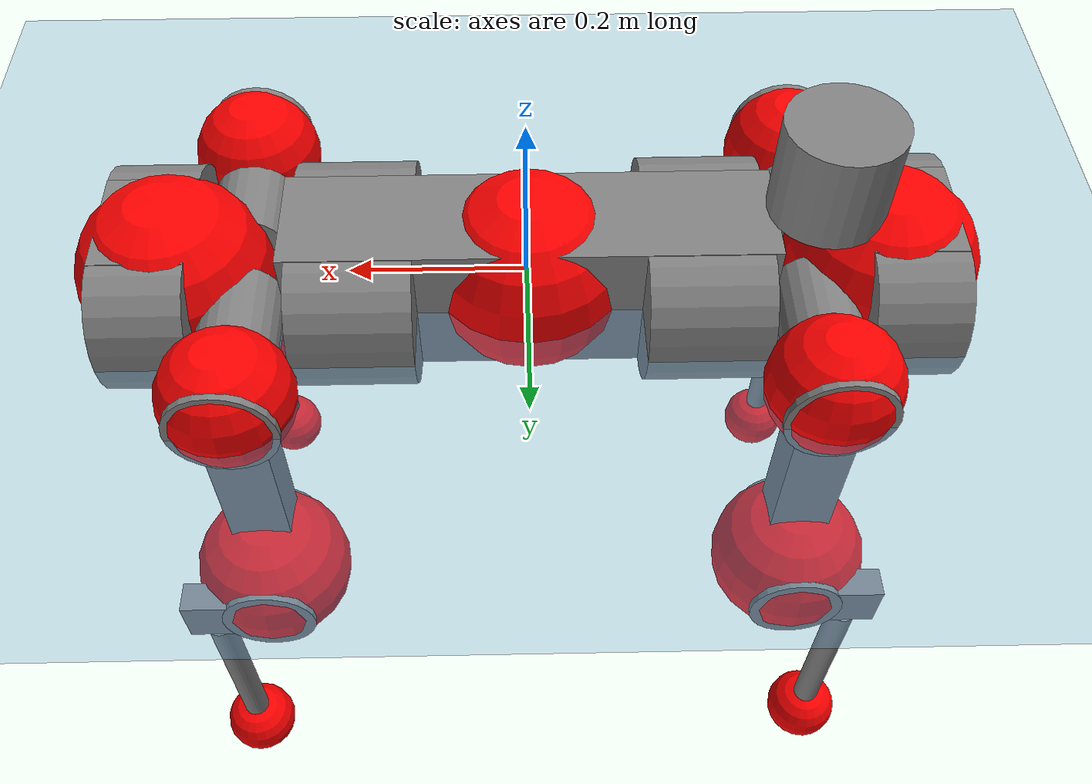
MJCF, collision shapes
<mujoco model="anymal_c">
  <compiler angle="radian" assetdir="assets" balanceinertia="true" inertiafromgeom="false"/>

  <option timestep="0.005" density="1.2" viscosity="2e-05"/>

  <size nkey="1"/>

  <visual>
    <quality shadowsize="8192"/>
    <map shadowclip="0.5"/>
  </visual>

  <default>
    <default class="/">
      <material specular="0" shininess="0.25"/>
      <geom contype="0" conaffinity="0" group="1" solref="-1000 -80"/>
      <site size="0.01 0.005 0.005" group="5"/>
      <general forcelimited="true" forcerange="-80 80" biastype="affine" gainprm="80" biasprm="0 -80 -2"/>
      <default class="anymal_c">
        <joint armature="0.01" damping="0.01" frictionloss="0.1"/>
        <default class="visual">
          <geom type="mesh" group="2"/>
          <default class="visual_zflip"/>
        </default>
        <default class="collision">
          <geom type="cylinder" group="3"/>
          <default class="foot">
            <geom size="0.03 0 0" type="sphere" condim="6" priority="1" friction="0.8 0.02 0.01" solimp="0.015 1 0.03"/>
          </default>
        </default>
      </default>
      <default class="reward_collision_sphere">
        <geom group="5" rgba="1 0 0 1"/>
      </default>
    </default>
  </default>

  <asset>
    <texture type="skybox" colorspace="auto" name="//unnamed_texture_0" builtin="gradient" rgb1="0.95 0.95 0.95" rgb2="0.95 0.95 0.95" width="100" height="600"/>
    <texture type="2d" colorspace="auto" name="texplane" builtin="checker" rgb1="0.345 0.575 0.748" rgb2="0.345 0.575 0.748" markrgb="1 1 1" width="512" height="512"/>
    <texture type="2d" colorspace="linear" name="base" file="base.png"/>
    <texture type="2d" colorspace="linear" name="top_shell" file="top_shell.png"/>
    <texture type="2d" colorspace="linear" name="bottom_shell" file="bottom_shell.png"/>
    <texture type="2d" colorspace="linear" name="remote" file="remote.png"/>
    <texture type="2d" colorspace="linear" name="hatch" file="hatch.png"/>
    <texture type="2d" colorspace="linear" name="handle" file="handle.png"/>
    <texture type="2d" colorspace="linear" name="face" file="face.png"/>
    <texture type="2d" colorspace="linear" name="battery" file="battery.png"/>
    <texture type="2d" colorspace="linear" name="lidar_cage" file="lidar_cage.png"/>
    <texture type="2d" colorspace="linear" name="depth_camera" file="depth_camera.png"/>
    <texture type="2d" colorspace="linear" name="wide_angle_camera" file="wide_angle_camera.png"/>
    <texture type="2d" colorspace="linear" name="lidar" file="lidar.png"/>
    <texture type="2d" colorspace="linear" name="drive" file="drive.png"/>
    <texture type="2d" colorspace="linear" name="hip_l" file="hip_l.png"/>
    <texture type="2d" colorspace="linear" name="shank_l" file="shank_l.png"/>
    <texture type="2d" colorspace="linear" name="foot" file="foot.png"/>
    <texture type="2d" colorspace="linear" name="thigh" file="thigh.png"/>
    <texture type="2d" colorspace="linear" name="shank_r" file="shank_r.png"/>
    <texture type="2d" colorspace="linear" name="hip_r" file="hip_r.png"/>
    <material name="MatPlane" class="/" texture="texplane" texuniform="true" texrepeat="2 2" specular="0.9" shininess="0.5"/>
    <material name="black_plastic" class="/" rgba="0.007 0.007 0.007 1"/>
    <material name="green" class="/" rgba="0.052 0.178 0.033 1"/>
    <material name="red" class="/" rgba="0.178 0.006 0.005 1"/>
    <material name="yellow" class="/" rgba="0.178 0.119 0.006 1"/>
    <material name="lwl" class="/" rgba="0.8 0.8 0.8 1"/>
    <material name="base" class="/" texture="base"/>
    <material name="top_shell" class="/" texture="top_shell"/>
    <material name="bottom_shell" class="/" texture="bottom_shell"/>
    <material name="hip_l" class="/" texture="hip_l"/>
    <material name="thigh" class="/" texture="thigh"/>
    <material name="shank_l" class="/" texture="shank_l"/>
    <material name="foot" class="/" texture="foot"/>
    <material name="hip_r" class="/" texture="hip_r"/>
    <material name="shank" class="/" texture="shank_r"/>
    <material name="hatch" class="/" texture="hatch"/>
    <material name="remote" class="/" texture="remote"/>
    <material name="handle" class="/" texture="handle"/>
    <material name="face" class="/" texture="face"/>
    <material name="depth_camera" class="/" texture="depth_camera"/>
    <material name="wide_angle_camera" class="/" texture="wide_angle_camera"/>
    <material name="battery" class="/" texture="battery"/>
    <material name="lidar_cage" class="/" texture="lidar_cage"/>
    <material name="lidar" class="/" texture="lidar"/>
    <material name="drive" class="/" texture="drive"/>
    <mesh name="base_0" class="/" file="base_0.obj"/>
    <mesh name="base_1" class="/" file="base_1.obj"/>
    <mesh name="base_2" class="/" file="base_2.obj"/>
    <mesh name="base_3" class="/" file="base_3.obj"/>
    <mesh name="base_4" class="/" file="base_4.obj"/>
    <mesh name="base_5" class="/" file="base_5.obj"/>
    <mesh name="top_shell" class="/" file="top_shell.obj"/>
    <mesh name="bottom_shell" class="/" file="bottom_shell.obj"/>
    <mesh name="remote" class="/" file="remote.obj"/>
    <mesh name="handle" class="/" file="handle.obj"/>
    <mesh name="face" class="/" file="face.obj"/>
    <mesh name="wide_angle_camera" class="/" file="wide_angle_camera.obj"/>
    <mesh name="depth_camera" class="/" file="depth_camera.obj"/>
    <mesh name="battery" class="/" file="battery.obj"/>
    <mesh name="lidar_cage" class="/" file="lidar_cage.obj"/>
    <mesh name="lidar" class="/" file="lidar.obj"/>
    <mesh name="drive" class="/" file="drive.obj"/>
    <mesh name="hip_l" class="/" file="hip_l.obj"/>
    <mesh name="thigh" class="/" file="thigh.obj"/>
    <mesh name="shank_l" class="/" file="shank_l.obj"/>
    <mesh name="foot" class="/" file="foot.obj"/>
    <mesh name="hip_r" class="/" file="hip_r.obj"/>
    <mesh name="hatch" class="/" file="hatch.obj"/>
    <mesh name="shank_r" class="/" file="shank_r.obj"/>
  </asset>

  <worldbody>
    <geom name="floor" class="/" size="100 100 0.125" type="plane" group="0" material="MatPlane"/>
    <light name="toplight_shadow" class="/" pos="0 0 5" dir="0.0990148 0.0990148 -0.990148" type="directional" ambient="0.04 0.04 0.04" diffuse="0.55 0.55 0.55" specular="0.12 0.12 0.12"/>
    <light name="toplight_fill" class="/" pos="0 0 5" dir="0.0990148 0.0990148 -0.990148" type="directional" castshadow="false" ambient="0.04 0.04 0.04" diffuse="0.3 0.3 0.3" specular="0.08 0.08 0.08"/>
    <body name="trunk" childclass="anymal_c" pos="-0.0027709 -0.00105866 -0.00197592" quat="0.999999 -0.000463138 0.000310841 0.00116152">
      <inertial pos="-0.000196364 0.00191385 0.0534106" quat="0.494086 0.496255 0.497799 0.51167" mass="15.1777" diaginertia="0.34773 0.227666 0.325363"/>
      <joint name="//unnamed_joint_0" type="free" armature="0" damping="0" frictionloss="0"/>
      <geom name="//unnamed_geom_1" class="visual" material="green" mesh="base_0"/>
      <geom name="//unnamed_geom_2" class="visual" material="yellow" mesh="base_1"/>
      <geom name="//unnamed_geom_3" class="visual" material="red" mesh="base_2"/>
      <geom name="//unnamed_geom_4" class="visual" material="black_plastic" mesh="base_3"/>
      <geom name="//unnamed_geom_5" class="visual" material="lwl" mesh="base_4"/>
      <geom name="//unnamed_geom_6" class="visual" material="base" mesh="base_5"/>
      <geom name="trunk_1" class="collision" size="0.269156 0.0649687 0.0835311" type="box"/>
      <geom name="trunk_2" class="collision" size="0.0835311 0.067289" pos="0.191919 0.0574063 0" quat="0.707107 0 0.707107 0"/>
      <geom name="trunk_3" class="collision" size="0.0835311 0.067289" pos="-0.191919 0.0574063 0" quat="0.707107 0 0.707107 0"/>
      <geom name="trunk_4" class="collision" size="0.0835311 0.067289" pos="0.191919 -0.0574063 0" quat="0.707107 0 0.707107 0"/>
      <geom name="trunk_5" class="collision" size="0.0835311 0.067289" pos="-0.191919 -0.0574063 0" quat="0.707107 0 0.707107 0"/>
      <geom name="//unnamed_geom_12" class="visual" material="top_shell" mesh="top_shell"/>
      <geom name="//unnamed_geom_13" class="visual" material="bottom_shell" mesh="bottom_shell"/>
      <geom name="//unnamed_geom_14" class="visual" material="remote" mesh="remote"/>
      <geom name="//unnamed_geom_15" class="visual" material="handle" mesh="handle"/>
      <geom name="//unnamed_geom_16" class="visual" pos="0.365749 0 0" quat="1 0 0 0" material="face" mesh="face"/>
      <geom name="trunk_6" class="collision" size="0.0510468 0.0649687 0.0835311" pos="0.41428 0 0" type="box"/>
      <geom name="//unnamed_geom_18" class="collision" size="0.0835311 0.0510468" pos="0.41428 0.0574063 0" quat="0.707107 0 0.707107 0"/>
      <geom name="//unnamed_geom_19" class="collision" size="0.0835311 0.0510468" pos="0.41428 -0.0574063 0" quat="0.707107 0 0.707107 0"/>
      <geom name="//unnamed_geom_20" class="visual" pos="0.407362 0 -0.0331077" quat="0.965926 0 0.258819 0" material="depth_camera" mesh="depth_camera"/>
      <geom name="//unnamed_geom_21" class="visual" pos="0.452664 0 0.016196" material="wide_angle_camera" mesh="wide_angle_camera"/>
      <geom name="//unnamed_geom_22" class="visual_zflip" pos="-0.365749 0 0" quat="0 0 0 1" material="face" mesh="face"/>
      <geom name="trunk_7" class="collision" size="0.0510468 0.0649687 0.0835311" pos="-0.41428 0 0" quat="0 0 0 1" type="box"/>
      <geom name="//unnamed_geom_24" class="collision" size="0.0835311 0.0510468" pos="-0.41428 -0.0574063 0" quat="0 -0.707107 0 0.707107"/>
      <geom name="//unnamed_geom_25" class="collision" size="0.0835311 0.0510468" pos="-0.41428 0.0574063 0" quat="0 -0.707107 0 0.707107"/>
      <geom name="//unnamed_geom_26" class="visual" pos="-0.407362 0 -0.0331077" quat="0 -0.258819 0 0.965926" material="depth_camera" mesh="depth_camera"/>
      <geom name="//unnamed_geom_27" class="visual_zflip" pos="-0.452664 0 0.016196" quat="0 0 0 1" material="wide_angle_camera" mesh="wide_angle_camera"/>
      <geom name="//unnamed_geom_28" class="visual" material="battery" mesh="battery"/>
      <geom name="//unnamed_geom_29" class="visual" pos="0 0.0618949 0.0299128" quat="0.683013 -0.183013 0.183013 0.683013" material="depth_camera" mesh="depth_camera"/>
      <geom name="//unnamed_geom_30" class="visual" pos="0 -0.0618949 0.0299128" quat="0.683013 0.183013 0.183013 -0.683013" material="depth_camera" mesh="depth_camera"/>
      <geom name="//unnamed_geom_31" class="visual" pos="-0.321188 0 0.0795194" quat="1 0 0 0" material="lidar_cage" mesh="lidar_cage"/>
      <geom name="trunk_8" class="collision" size="0.0649687 0.0556874" pos="-0.321188 0 0.144433"/>
      <geom name="//unnamed_geom_33" class="visual" pos="-0.321188 -2.44745e-05 0.153846" quat="0.707107 0 0 -0.707107" material="lidar" mesh="lidar"/>
      <geom name="//unnamed_geom_34" class="visual" pos="0.264627 0.0853823 -4.5162e-09" quat="0.258819 0.965926 0 0" material="drive" mesh="drive"/>
      <geom name="//unnamed_geom_35" class="visual" pos="0.264627 -0.0853823 4.5162e-09" quat="0.258819 -0.965926 0 0" material="drive" mesh="drive"/>
      <geom name="//unnamed_geom_36" class="visual" pos="-0.264627 0.0853823 4.5162e-09" quat="0 0 0.965926 -0.258819" material="drive" mesh="drive"/>
      <geom name="//unnamed_geom_37" class="visual" pos="-0.264627 -0.0853823 -4.5162e-09" quat="0 0 -0.965926 -0.258819" material="drive" mesh="drive"/>
      <geom name="//unnamed_geom_38" class="visual" pos="0.102357 0 0.0789784" quat="1 0 0 0" material="hatch" mesh="hatch"/>
      <geom name="//unnamed_geom_39" class="reward_collision_sphere" size="0.111375"/>
      <geom name="//unnamed_geom_40" class="reward_collision_sphere" size="0.111375" pos="0.397073 0 0"/>
      <geom name="//unnamed_geom_41" class="reward_collision_sphere" size="0.111375" pos="-0.397073 0 0"/>
      <site name="imu" pos="0.230793 -0.00180595 0.0459276" size="0.00928124"/>
      <camera name="track" pos="0 -1.64018 0" quat="0.707107 0.707107 0 0" mode="trackcom"/>
      <camera name="ego_camera" pos="0.397073 0 -0.0432759" quat="-0.5 -0.5 0.5 0.5"/>
      <body name="LF_HIP" pos="0.265427 0.0856008 -0.00274171" quat="0.258358 0.966049 -0.000146928 0.00101494">
        <inertial pos="0.0480626 -0.0129822 -0.0087075" quat="-0.131643 0.709693 -0.121938 0.681276" mass="2.29379" diaginertia="0.00322673 0.00188149 0.00515182"/>
        <joint name="LF_HAA" pos="0 0 0" axis="0.999894 -0.0082261 0.0120536" stiffness="0.00118257" range="-0.670023 0.488905" armature="0.0106731" damping="0.00419205" frictionloss="0.0976067"/>
        <geom name="//unnamed_geom_42" class="visual" pos="0 -0.000265668 4.36357e-05" quat="0.258819 -0.965926 0 0" material="hip_l" mesh="hip_l"/>
        <geom name="//unnamed_geom_43" class="visual" pos="0.0528549 -0.0633177 -0.038493" quat="0.183013 -0.683013 0.683013 0.183013" material="drive" mesh="drive"/>
        <geom name="//unnamed_geom_44" class="collision" size="0.0464062 0.0649687" pos="0.0528549 -0.0098081 -0.00747049" quat="-0.353553 -0.612372 0.612372 -0.353553"/>
        <body name="LF_THIGH" pos="0.0530591 -0.059643 -0.0468461" quat="0.182836 -0.682938 0.683188 0.182814">
          <inertial pos="0.0271827 -0.00235767 -0.26748" quat="0.993225 -0.00537742 -0.0803782 0.083754" mass="2.47503" diaginertia="0.0159374 0.0107473 0.0061196"/>
          <joint name="LF_HFE" pos="0 0 0" axis="1 9.4943e-05 -3.18787e-05" stiffness="0.00711508" range="-3.14908 3.17944" armature="0.00838148" damping="0" frictionloss="0.0932616"/>
          <geom name="//unnamed_geom_45" class="visual" pos="0.00123945 1.95308e-06 0" quat="0.707107 0 0 -0.707107" material="thigh" mesh="thigh"/>
          <geom name="//unnamed_geom_46" class="collision" size="0.060328 0.0371249" pos="0.0352954 0 0" quat="0.5 0.5 -0.5 -0.5"/>
          <geom name="//unnamed_geom_47" class="collision" size="0.0348046 0.0278437 0.131157" pos="0.0264716 0 -0.152887" quat="0.707107 0 0 -0.707107" type="box"/>
          <geom name="//unnamed_geom_48" class="visual" pos="0.0885033 0 -0.30834" quat="1 0 0 0" material="drive" mesh="drive"/>
          <geom name="//unnamed_geom_49" class="collision" size="0.0464062 0.0649687" pos="0.0267363 0 -0.30834" quat="0.707107 0 0.707107 0"/>
          <geom name="//unnamed_geom_50" class="reward_collision_sphere" size="0.0742499" pos="0.0220596 0 0"/>
          <body name="LF_SHANK" pos="0.0899543 0.00166736 -0.305781" quat="1 -1.67061e-05 5.20862e-05 -0.000143326">
            <inertial pos="0.00468872 -0.0523954 -0.0846348" quat="0.9929 -0.116371 -2.5726e-05 -0.0246553" mass="0.487773" diaginertia="0.00565414 0.00346762 0.00166211"/>
            <joint name="LF_KFE" pos="0 0 0" axis="1 0.000279247 0.00034364" range="-3.0873 3.08674" armature="0.00919119" damping="0.00928983" frictionloss="0.0977306"/>
            <geom name="//unnamed_geom_51" class="visual" pos="0.000404157 0.00215498 0" quat="0.707107 0 0 -0.707107" material="shank_l" mesh="shank_l"/>
            <geom name="LF_kfe_act" class="collision" size="0.0556874 0.0185625" pos="0.0176477 0 0" quat="0.5 0.5 -0.5 -0.5"/>
            <geom name="//unnamed_geom_53" class="collision" size="0.0533662 0.0313242 0.0176344" pos="0.0176477 -0.0471543 0" quat="0.5 0.5 -0.5 -0.5" type="box"/>
            <geom name="//unnamed_geom_54" class="visual" pos="0.011515 -0.0714324 -0.365649" quat="0.382683 0 0 -0.92388" material="foot" mesh="foot"/>
            <geom name="LF_calf" class="collision" size="0.0162422 0.131099" pos="0.0115151 -0.0721269 -0.182824" quat="0.707107 0 0 -0.707107"/>
            <geom name="LF_foot" class="foot" size="0.026781" pos="0.0115151 -0.0721269 -0.341306" quat="0.707107 0 0 -0.707107"/>
            <geom name="//unnamed_geom_57" class="reward_collision_sphere" size="0.0928124" pos="-0.0441193 0 0"/>
            <geom name="//unnamed_geom_58" class="reward_collision_sphere" size="0.0464062" pos="0.0115151 -0.0721269 -0.341306"/>
            <site name="LF_foot" class="foot" pos="0.0115151 -0.0721269 -0.341306" quat="0.707107 0 0 -0.707107" size="0.00928124"/>
          </body>
        </body>
      </body>
      <body name="RF_HIP" pos="0.267273 -0.0836371 0.00258401" quat="0.258833 -0.965922 -6.22154e-06 -1.52306e-05">
        <inertial pos="0.0503136 0.0103814 -0.00863067" quat="0.126619 0.681692 0.135852 0.707678" mass="2.2921" diaginertia="0.00314015 0.00190815 0.0049625"/>
        <joint name="RF_HAA" pos="0 0 0" axis="0.999998 0.000723533 -0.00186881" stiffness="0.000555016" range="-0.437393 0.714094" armature="0.00936817" damping="0.0105653" frictionloss="0.095591"/>
        <geom name="//unnamed_geom_59" class="visual" pos="0 0.000265666 4.36356e-05" quat="0.258819 0.965926 0 0" material="hip_r" mesh="hip_r"/>
        <geom name="//unnamed_geom_60" class="visual" pos="0.0528549 0.0633177 -0.038493" quat="0.183013 0.683013 0.683013 -0.183013" material="drive" mesh="drive"/>
        <geom name="//unnamed_geom_61" class="collision" size="0.0464062 0.0649687" pos="0.0528549 0.0098081 -0.00747049" quat="-0.353553 0.612372 0.612372 0.353553"/>
        <body name="RF_THIGH" pos="0.055022 0.0617843 -0.0485933" quat="0.183059 0.68299 0.683 -0.1831">
          <inertial pos="0.0276317 -8.12212e-05 -0.267866" quat="0.993614 -0.00163202 -0.076806 0.0826362" mass="2.53663" diaginertia="0.0162185 0.0113925 0.0063724"/>
          <joint name="RF_HFE" pos="0 0 0" axis="0.999996 0.00289462 -0.00044631" stiffness="0.00486253" range="-3.1892 3.19491" armature="0.00808597" damping="0.00805791" frictionloss="0.0902493"/>
          <geom name="//unnamed_geom_62" class="visual" pos="0.00123945 1.95308e-06 0" quat="0.707107 0 0 -0.707107" material="thigh" mesh="thigh"/>
          <geom name="//unnamed_geom_63" class="collision" size="0.060328 0.0371249" pos="0.0352954 0 0" quat="0.5 0.5 0.5 0.5"/>
          <geom name="//unnamed_geom_64" class="collision" size="0.0348046 0.0278437 0.131157" pos="0.0264716 0 -0.152887" quat="0.707107 0 0 0.707107" type="box"/>
          <geom name="//unnamed_geom_65" class="visual" pos="0.0885033 0 -0.30834" quat="1 0 0 0" material="drive" mesh="drive"/>
          <geom name="//unnamed_geom_66" class="collision" size="0.0464062 0.0649687" pos="0.0267363 0 -0.30834" quat="0.707107 0 0.707107 0"/>
          <geom name="//unnamed_geom_67" class="reward_collision_sphere" size="0.0742499" pos="0.0220596 0 0"/>
          <body name="RF_SHANK" pos="0.0892338 -0.000648812 -0.308877" quat="1 -5.72481e-05 0.000102917 3.73878e-05">
            <inertial pos="0.00438744 0.050285 -0.0856046" quat="0.992282 0.1228 0.000831267 0.0172208" mass="0.444956" diaginertia="0.00541649 0.00343596 0.00157484"/>
            <joint name="RF_KFE" pos="0 0 0" axis="0.999999 0.00147574 7.0936e-05" range="-3.15449 3.09367" armature="0.0106507" damping="0.00787101" frictionloss="0.0927407"/>
            <geom name="//unnamed_geom_68" class="visual" pos="0.000404155 -0.00215498 0" quat="0.707107 0 0 0.707107" material="shank" mesh="shank_r"/>
            <geom name="RF_kfe_act" class="collision" size="0.0556874 0.0185625" pos="0.0176477 0 0" quat="0.5 0.5 0.5 0.5"/>
            <geom name="//unnamed_geom_70" class="collision" size="0.0533662 0.0313242 0.0176344" pos="0.0176477 0.0471543 0" quat="0.5 0.5 0.5 0.5" type="box"/>
            <geom name="//unnamed_geom_71" class="visual" pos="0.0115152 0.0714324 -0.365649" quat="0.382683 0 0 0.92388" material="foot" mesh="foot"/>
            <geom name="RF_calf" class="collision" size="0.0162422 0.131099" pos="0.0115151 0.0721269 -0.182824" quat="0.707107 0 0 0.707107"/>
            <geom name="RF_foot" class="foot" size="0.0288941" pos="0.0115151 0.0721269 -0.341306" quat="0.707107 0 0 0.707107"/>
            <geom name="//unnamed_geom_74" class="reward_collision_sphere" size="0.0928124" pos="-0.0441193 0 0"/>
            <geom name="//unnamed_geom_75" class="reward_collision_sphere" size="0.0464062" pos="0.0115151 0.0721269 -0.341306"/>
            <site name="RF_foot" class="foot" pos="0.0115151 0.0721269 -0.341306" quat="0.707107 0 0 0.707107" size="0.00928124"/>
          </body>
        </body>
      </body>
      <body name="LH_HIP" pos="-0.263105 0.0844196 -0.00137664" quat="-8.67291e-05 0.000111403 0.966001 -0.258539">
        <inertial pos="0.0506733 0.0132458 -0.0115782" quat="0.135523 0.68275 0.128918 0.706305" mass="2.32366" diaginertia="0.00328306 0.00178736 0.00489396"/>
        <joint name="LH_HAA" pos="0 0 0" axis="0.999999 -0.00117766 -0.000255503" range="-0.453641 0.773347" armature="0.00939872" damping="0" frictionloss="0.104726"/>
        <geom name="//unnamed_geom_76" class="visual" pos="0 0.000265666 4.36356e-05" quat="-0.258819 -0.965926 0 0" material="hip_r" mesh="hip_r"/>
        <geom name="//unnamed_geom_77" class="visual" pos="0.0528549 0.0633177 -0.038493" quat="0.183013 0.683013 0.683013 -0.183013" material="drive" mesh="drive"/>
        <geom name="//unnamed_geom_78" class="collision" size="0.0464062 0.0649687" pos="0.0528549 0.0098081 -0.00747049" quat="-0.353553 0.612372 0.612372 0.353553"/>
        <body name="LH_THIGH" pos="0.0523811 0.0598303 -0.0480172" quat="0.182755 0.683136 0.682945 -0.18306">
          <inertial pos="0.0246215 -0.00106869 -0.267431" quat="0.994203 -0.00694938 -0.0735617 0.0781021" mass="2.52191" diaginertia="0.015963 0.011296 0.00610508"/>
          <joint name="LH_HFE" pos="0 0 0" axis="0.999877 -0.0155203 -0.00228874" range="-3.19275 3.15371" armature="0.00966723" damping="0.0102718" frictionloss="0.0904995"/>
          <geom name="//unnamed_geom_79" class="visual" pos="0.00123945 1.95308e-06 0" quat="0.707107 0 0 -0.707107" material="thigh" mesh="thigh"/>
          <geom name="//unnamed_geom_80" class="collision" size="0.060328 0.0371249" pos="0.0352954 0 0" quat="0.5 0.5 -0.5 -0.5"/>
          <geom name="//unnamed_geom_81" class="collision" size="0.0348046 0.0278437 0.131157" pos="0.0264716 0 -0.152887" quat="0.707107 0 0 -0.707107" type="box"/>
          <geom name="//unnamed_geom_82" class="visual" pos="0.0885033 0 -0.30834" quat="1 0 0 0" material="drive" mesh="drive"/>
          <geom name="//unnamed_geom_83" class="collision" size="0.0464062 0.0649687" pos="0.0267363 0 -0.30834" quat="0.707107 0 0.707107 0"/>
          <geom name="//unnamed_geom_84" class="reward_collision_sphere" size="0.0742499" pos="0.0220596 0 0"/>
          <body name="LH_SHANK" pos="0.0866795 0.000243219 -0.310839" quat="1 -8.86866e-05 -0.000163468 0.000387917">
            <inertial pos="0.00713441 0.047605 -0.084665" quat="0.994043 0.10406 -0.00447833 0.0320818" mass="0.454498" diaginertia="0.00545467 0.00348236 0.00164696"/>
            <joint name="LH_KFE" pos="0 0 0" axis="0.999926 0.00243212 0.0118946" range="-3.13685 3.14251" armature="0.00889438" damping="0.00292874" frictionloss="0.103869"/>
            <geom name="//unnamed_geom_85" class="visual" pos="0.000404155 -0.00215498 0" quat="-0.707107 0 0 -0.707107" material="shank" mesh="shank_r"/>
            <geom name="LH_kfe_act" class="collision" size="0.0556874 0.0185625" pos="0.0176477 0 0" quat="0.5 0.5 -0.5 -0.5"/>
            <geom name="//unnamed_geom_87" class="collision" size="0.0533662 0.0313242 0.0176344" pos="0.0176477 0.0471543 0" quat="0.5 0.5 -0.5 -0.5" type="box"/>
            <geom name="//unnamed_geom_88" class="visual" pos="0.0115152 0.0714324 -0.365649" quat="-0.382683 0 0 -0.92388" material="foot" mesh="foot"/>
            <geom name="LH_calf" class="collision" size="0.0162422 0.131099" pos="0.0115151 0.0721269 -0.182824" quat="0.707107 0 0 -0.707107"/>
            <geom name="LH_foot" class="foot" size="0.0321418" pos="0.0115151 0.0721269 -0.341306" quat="0.707107 0 0 -0.707107"/>
            <geom name="//unnamed_geom_91" class="reward_collision_sphere" size="0.0928124" pos="-0.0441193 0 0"/>
            <geom name="//unnamed_geom_92" class="reward_collision_sphere" size="0.0464062" pos="0.0115151 0.0721269 -0.341306"/>
            <site name="LH_foot" class="foot" pos="0.0115151 0.0721269 -0.341306" quat="0.707107 0 0 -0.707107" size="0.00928124"/>
          </body>
        </body>
      </body>
      <body name="RH_HIP" pos="-0.264524 -0.086183 0.00146727" quat="0.000151133 5.95456e-05 -0.965876 -0.259006">
        <inertial pos="0.0504156 -0.0100236 -0.0119988" quat="-0.127266 0.709828 -0.135111 0.679479" mass="2.20823" diaginertia="0.00309118 0.00179665 0.00476036"/>
        <joint name="RH_HAA" pos="0 0 0" axis="1 0.00020826 -0.000285294" range="-0.708367 0.436829" armature="0.00828424" damping="0" frictionloss="0.0965988"/>
        <geom name="//unnamed_geom_93" class="visual" pos="0 -0.000265668 4.36357e-05" quat="-0.258819 0.965926 0 0" material="hip_l" mesh="hip_l"/>
        <geom name="//unnamed_geom_94" class="visual" pos="0.0528549 -0.0633177 -0.038493" quat="-0.183013 0.683013 -0.683013 -0.183013" material="drive" mesh="drive"/>
        <geom name="//unnamed_geom_95" class="collision" size="0.0464062 0.0649687" pos="0.0528549 -0.0098081 -0.00747049" quat="0.353553 0.612372 -0.612372 0.353553"/>
        <body name="RH_THIGH" pos="0.052036 -0.0591416 -0.0427968" quat="-0.183103 0.683068 -0.682974 -0.182862">
          <inertial pos="0.0249999 0.00269925 -0.265699" quat="0.993231 -0.00638087 -0.0800773 0.0839018" mass="2.28649" diaginertia="0.0159386 0.0108273 0.00619575"/>
          <joint name="RH_HFE" pos="0 0 0" axis="0.999982 0.00579124 0.00172149" stiffness="0.0107619" range="-3.18785 3.19378" armature="0.00952441" damping="0.00830763" frictionloss="0.0799558"/>
          <geom name="//unnamed_geom_96" class="visual" pos="0.00123945 1.95308e-06 0" quat="0.707107 0 0 -0.707107" material="thigh" mesh="thigh"/>
          <geom name="//unnamed_geom_97" class="collision" size="0.060328 0.0371249" pos="0.0352954 0 0" quat="0.5 0.5 0.5 0.5"/>
          <geom name="//unnamed_geom_98" class="collision" size="0.0348046 0.0278437 0.131157" pos="0.0264716 0 -0.152887" quat="0.707107 0 0 0.707107" type="box"/>
          <geom name="//unnamed_geom_99" class="visual" pos="0.0885033 0 -0.30834" quat="1 0 0 0" material="drive" mesh="drive"/>
          <geom name="//unnamed_geom_100" class="collision" size="0.0464062 0.0649687" pos="0.0267363 0 -0.30834" quat="0.707107 0 0.707107 0"/>
          <geom name="//unnamed_geom_101" class="reward_collision_sphere" size="0.0742499" pos="0.0220596 0 0"/>
          <body name="RH_SHANK" pos="0.0903484 0.00143749 -0.306888" quat="1 0.000488999 -0.000303593 -8.31571e-05">
            <inertial pos="0.00570579 -0.0499717 -0.0872418" quat="0.992907 -0.115121 -0.00429267 -0.0293917" mass="0.438672" diaginertia="0.00529673 0.00334733 0.0015923"/>
            <joint name="RH_KFE" pos="0 0 0" axis="0.999988 0.00370763 -0.00320601" range="-3.12884 3.18172" armature="0.00855889" damping="0.00169679" frictionloss="0.0904865"/>
            <geom name="//unnamed_geom_102" class="visual" pos="0.000404157 0.00215498 0" quat="0.707107 0 0 -0.707107" material="shank_l" mesh="shank_l"/>
            <geom name="RH_kfe_act" class="collision" size="0.0556874 0.0185625" pos="0.0176477 0 0" quat="0.5 0.5 0.5 0.5"/>
            <geom name="//unnamed_geom_104" class="collision" size="0.0533662 0.0313242 0.0176344" pos="0.0176477 -0.0471543 0" quat="0.5 0.5 0.5 0.5" type="box"/>
            <geom name="//unnamed_geom_105" class="visual" pos="0.011515 -0.0714324 -0.365649" quat="0.382683 0 0 -0.92388" material="foot" mesh="foot"/>
            <geom name="RH_calf" class="collision" size="0.0162422 0.131099" pos="0.0115151 -0.0721269 -0.182824" quat="0.707107 0 0 0.707107"/>
            <geom name="RH_foot" class="foot" size="0.026332" pos="0.0115151 -0.0721269 -0.341306" quat="0.707107 0 0 0.707107"/>
            <geom name="//unnamed_geom_108" class="reward_collision_sphere" size="0.0928124" pos="-0.0441193 0 0"/>
            <geom name="//unnamed_geom_109" class="reward_collision_sphere" size="0.0464062" pos="0.0115151 -0.0721269 -0.341306"/>
            <site name="RH_foot" class="foot" pos="0.0115151 -0.0721269 -0.341306" quat="0.707107 0 0 0.707107" size="0.00928124"/>
          </body>
        </body>
      </body>
    </body>
  </worldbody>

  <contact>
    <pair class="/" geom1="floor" geom2="LF_foot" name="//unnamed_contact_0"/>
    <pair class="/" geom1="floor" geom2="RF_foot" name="//unnamed_contact_1"/>
    <pair class="/" geom1="floor" geom2="LH_foot" name="//unnamed_contact_2"/>
    <pair class="/" geom1="floor" geom2="RH_foot" name="//unnamed_contact_3"/>
  </contact>

  <actuator>
    <general name="LF_HAA" class="/" joint="LF_HAA" forcerange="-73.6797 73.6797" gainprm="69.8944" biasprm="0 -69.8944 -1.94467"/>
    <general name="LF_HFE" class="/" joint="LF_HFE" forcerange="-81.6338 81.6338" gainprm="69.8944" biasprm="0 -69.8944 -1.94467"/>
    <general name="LF_KFE" class="/" joint="LF_KFE" forcerange="-66.5674 66.5674" gainprm="69.8944" biasprm="0 -69.8944 -1.94467"/>
    <general name="RF_HAA" class="/" joint="RF_HAA" forcerange="-71.5656 71.5656" gainprm="69.8944" biasprm="0 -69.8944 -1.94467"/>
    <general name="RF_HFE" class="/" joint="RF_HFE" forcerange="-83.2834 83.2834" gainprm="69.8944" biasprm="0 -69.8944 -1.94467"/>
    <general name="RF_KFE" class="/" joint="RF_KFE" forcerange="-78.28 78.28" gainprm="69.8944" biasprm="0 -69.8944 -1.94467"/>
    <general name="LH_HAA" class="/" joint="LH_HAA" forcerange="-81.1016 81.1016" gainprm="69.8944" biasprm="0 -69.8944 -1.94467"/>
    <general name="LH_HFE" class="/" joint="LH_HFE" forcerange="-80.7403 80.7403" gainprm="69.8944" biasprm="0 -69.8944 -1.94467"/>
    <general name="LH_KFE" class="/" joint="LH_KFE" forcerange="-70.5316 70.5316" gainprm="69.8944" biasprm="0 -69.8944 -1.94467"/>
    <general name="RH_HAA" class="/" joint="RH_HAA" forcerange="-74.9179 74.9179" gainprm="69.8944" biasprm="0 -69.8944 -1.94467"/>
    <general name="RH_HFE" class="/" joint="RH_HFE" forcerange="-69.0717 69.0717" gainprm="69.8944" biasprm="0 -69.8944 -1.94467"/>
    <general name="RH_KFE" class="/" joint="RH_KFE" forcerange="-66.7017 66.7017" gainprm="69.8944" biasprm="0 -69.8944 -1.94467"/>
  </actuator>

  <sensor>
    <gyro site="imu" name="imu_angular_velocity"/>
    <velocimeter site="imu" name="imu_linear_velocity"/>
    <framelinvel objtype="site" objname="LF_foot" name="LF_foot_global_linear_velocity"/>
    <framelinvel objtype="site" objname="RF_foot" name="RF_foot_global_linear_velocity"/>
    <framelinvel objtype="site" objname="LH_foot" name="LH_foot_global_linear_velocity"/>
    <framelinvel objtype="site" objname="RH_foot" name="RH_foot_global_linear_velocity"/>
  </sensor>

  <keyframe>
    <key name="home" qpos="0 0 0.55 1 0 0 0 0 0.4 -0.8 0 -0.4 0.8 0 -0.4 0.8 0 0.4 -0.8"/>
  </keyframe>
</mujoco>
